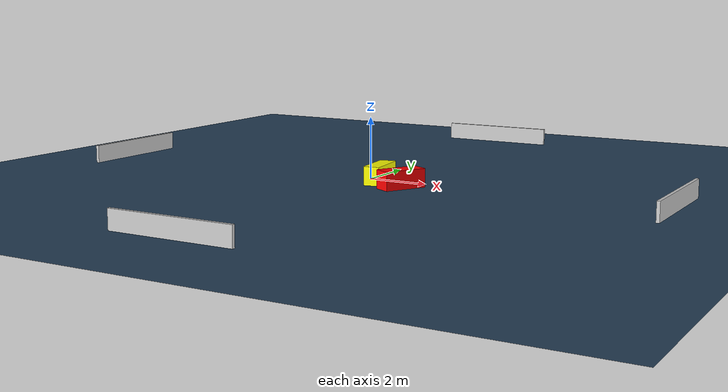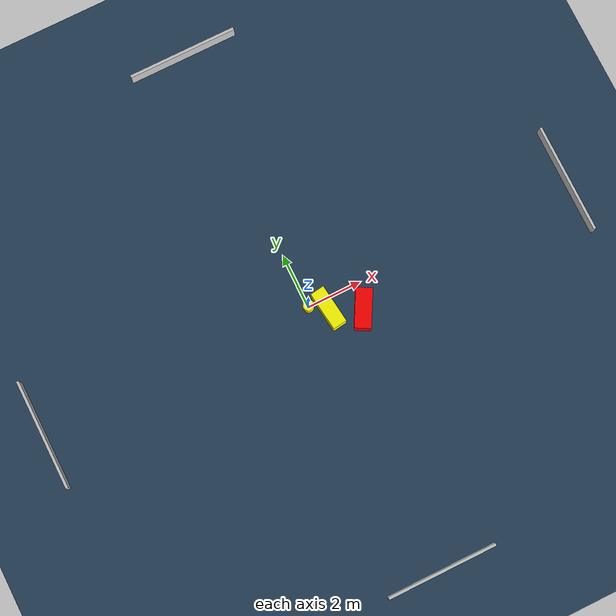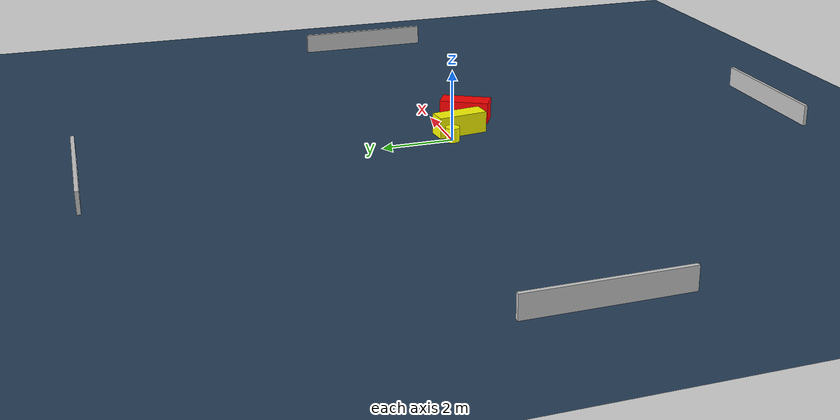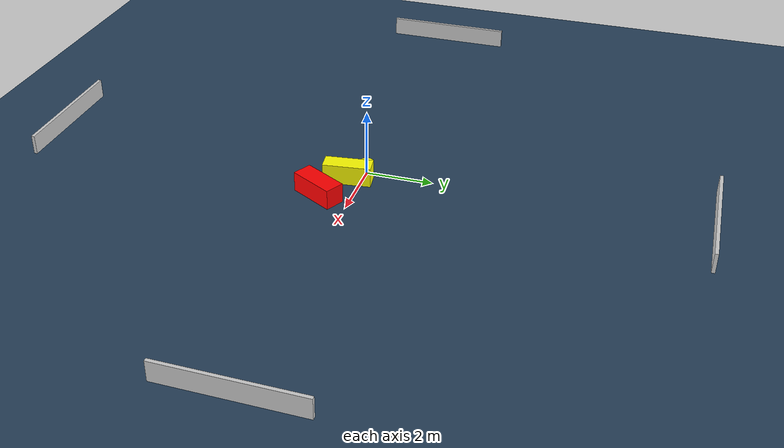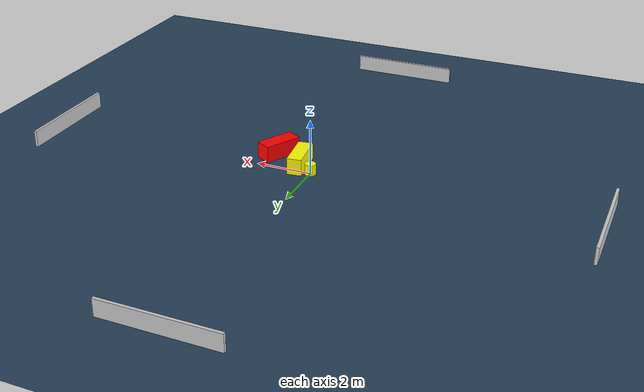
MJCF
<?xml version="1.0" ?>
<mujoco model="generated_environment">
  <option timestep="0.01" integrator="RK4" cone="elliptic"/>
  <default>
    <geom density="1"/>
  </default>
  <asset>
    <texture builtin="gradient" height="3072" name="skybox" rgb1="0.3 0.5 0.7" rgb2="0 0 0" type="skybox" width="512"/>
    <texture builtin="checker" height="300" name="groundplane" rgb1="0.2 0.3 0.4" rgb2="0.1 0.2 0.3" type="2d" width="300"/>
    <material name="groundplane" reflectance="0.2" texrepeat="5 5" texture="groundplane"/>
  </asset>
  <worldbody>
    <light dir="0 0 -1" directional="true" pos="0 0 1.5"/>
    <geom condim="3" friction="0.5 0.005 0.001" material="groundplane" name="floor" pos="0 0 0" size="0 0 0.05" type="plane"/>
    <body name="walls">
      <geom name="wall_1" condim="4" pos="-10.0 0.0 0.3" rgba="0.800000011920929 0.800000011920929 0.800000011920929 1.0" size="0.05 2.0 0.3" type="box"/>
      <geom name="wall_2" condim="4" pos="10.0 0.0 0.3" rgba="0.800000011920929 0.800000011920929 0.800000011920929 1.0" size="0.05 2.0 0.3" type="box"/>
      <geom name="wall_3" condim="4" pos="0.0 -10.0 0.3" rgba="0.800000011920929 0.800000011920929 0.800000011920929 1.0" size="2.0 0.05 0.3" type="box"/>
      <geom name="wall_4" condim="4" pos="0.0 10.0 0.3" rgba="0.800000011920929 0.800000011920929 0.800000011920929 1.0" size="2.0 0.05 0.3" type="box"/>
    </body>
    <body name="robot">
      <joint name="joint_x" type="slide" pos="0 0 0" axis="1 0 0"/>
      <joint name="joint_y" type="slide" pos="0 0 0" axis="0 1 0"/>
      <geom name="robot" type="cylinder" pos="0.0 0.0 0.2" size="0.2 0.2 0.0" mass="5.0" friction="1.0 0.005 0.0001" condim="4" rgba="1.0 1.0 0.0 1.0"/>
    </body>
    <body name="obstacle_1_movable">
      <geom name="obstacle_1_movable" condim="4" pos="0.5621481889380145 -0.3957994403169372 0.3" euler="0 0 277.15862983940406" friction="0.0 0.005 0.001" rgba="1.0 1.0 0.0 1.0" size="0.7121631394949628 0.2618735297523616 0.3" type="box" mass="0.1"/>
      <joint type="free"/>
    </body>
    <body name="obstacle_2_static">
      <geom name="obstacle_2_static" condim="4" pos="1.6280699919257753 -0.93424263097863 0.3" euler="0 0 151.2191830720829" friction="0.0 0.005 0.001" rgba="1.0 0.0 0.0 1.0" size="0.29513153200509185 0.7054440503137653 0.3" type="box"/>
    </body>
  </worldbody>
  <actuator>
    <motor name="actuator_x" joint="joint_x" gear="1" ctrlrange="-1 1"/>
    <motor name="actuator_y" joint="joint_y" gear="1" ctrlrange="-1 1"/>
  </actuator>
</mujoco>
